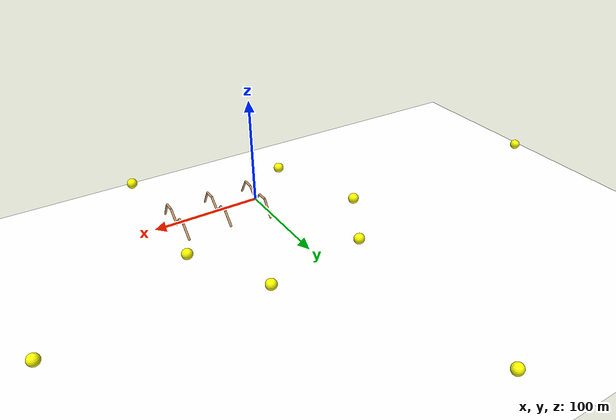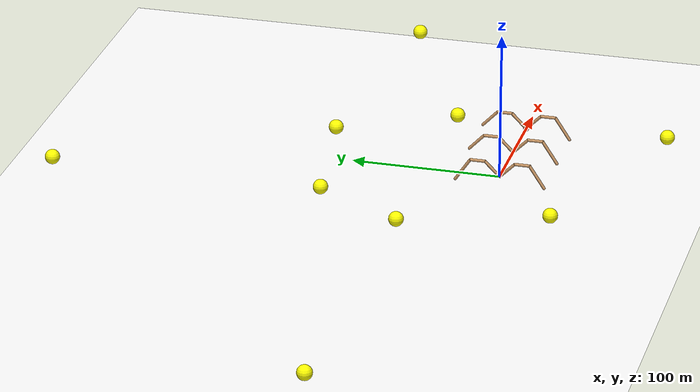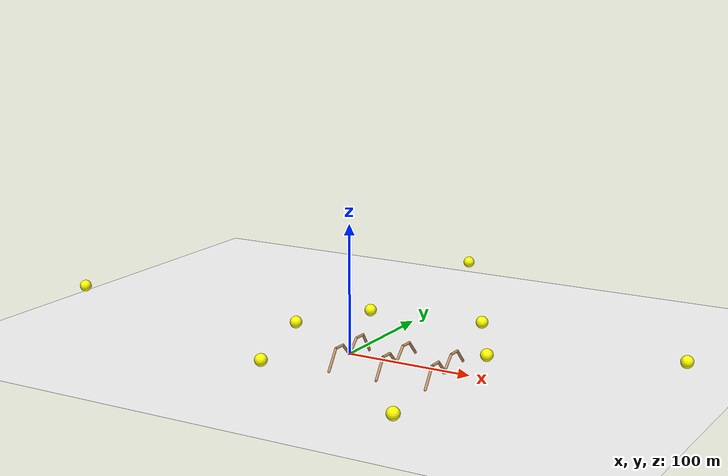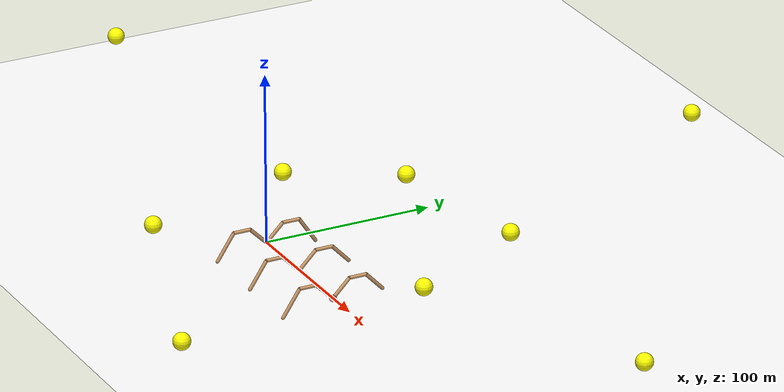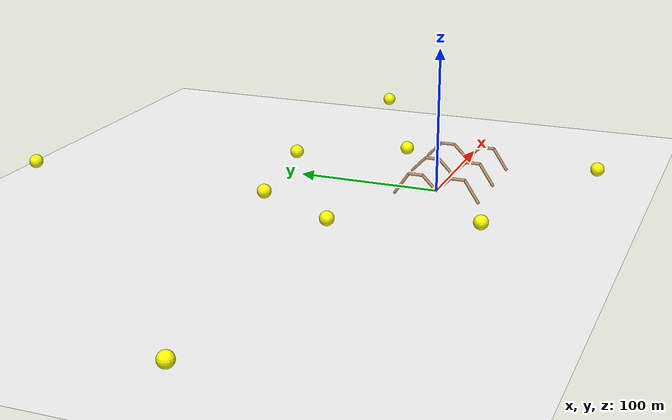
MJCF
<mujoco>
    <option timestep="0.02" viscosity="0" density="0" gravity="0 0 -9.81" collision="dynamic"/>
    <compiler coordinate="global" angle="degree"/>
    <default>
        <geom rgba=".8 .6 .4 1"/>
        <joint limited="true"/>
    </default>
    <asset>
        <texture type="skybox" builtin="gradient" rgb1="1 1 1" rgb2=".6 .8 1" width="256" height="256"/>
        <texture type="2d" name="checkers" builtin="checker" width="256" height="256" rgb1="0 0 0" rgb2="1 1 1"/>
        <material name="checker_mat" texture="checkers" texrepeat="15 15"/>
    </asset>
    <visual>
        <global offwidth="1920" offheight="1080"/>
    </visual>

    <worldbody>
        <camera name='targeting' pos='1 1 2' mode='targetbodycom' target='body_0'/>

        <geom name="floor" material="checker_mat" pos="30 50 -20" size="420 420 .125" rgba="1 1 1 1" type="plane"
              condim="6" friction="5 0.5 0.1"/>

        <site name="reference_0" pos="90 50 0" size="5 5 5" type="sphere" rgba="255 255 0 1"/>
        <site name="reference_1" pos="50 125 0" size="5 5 5" type="sphere" rgba="255 255 0 1"/>
        <site name="reference_2" pos="-45 110 0" size="5 5 5" type="sphere" rgba="255 255 0 1"/>
        <site name="reference_3" pos="-80 50 0" size="5 5 5" type="sphere" rgba="255 255 0 1"/>
        <site name="reference_4" pos="-50 -45 0" size="5 5 5" type="sphere" rgba="255 255 0 1"/>
        <site name="reference_5" pos="90 -95 0" size="5 5 5" type="sphere" rgba="255 255 0 1"/>
        <site name="reference_6" pos="225 110 0" size="5 5 5" type="sphere" rgba="255 255 0 1"/>
        <site name="reference_7" pos="-45 295 0" size="5 5 5" type="sphere" rgba="255 255 0 1"/>
        <site name="reference_8" pos="-300 50 0" size="5 5 5" type="sphere" rgba="255 255 0 1"/>

        <body name="body_0">
            <freejoint/>
            <site name="head" size="2 2 2" rgba="1 0 0 0.5" pos="80 0 0"/>
            <geom name="geom_0" type="sphere" pos="0.00 0.00 0.20" size="0.3"/>
            <body name="body_1">
                <!--1st arms-->
                <geom name="geom_1" type="capsule" fromto="0.00 0.00 0.00 0.00 10.0 10.0" size="01.00000"/>
                <geom name="geom_2" type="capsule" fromto="0.00 0.00 0.00 0.00 -10.0 10.0" size="01.00000"/>
                <!--spine-->
                <geom name="geom_3" type="capsule" fromto="0.00 0.00 0.00 80.0 0.00 0.00" size="01.00000"/>
                <!--contact point which is used to create heading vector-->
                <geom name="contact_1" type="sphere" pos="0.00 0.00 0.00" size="0.01" rgba="1 0 1 0.5" density="1"/>

                <!--2nd arms-->
                <geom name="geom_4" type="capsule" fromto="40.0 0.00 0.00 40.0 10.0 10.0" size="01.00000"/>
                <geom name="geom_5" type="capsule" fromto="40.0 0.00 0.00 40.0 -10.0 10.0" size="01.00000"/>

                <!--3rd arms-->
                <geom name="geom_18" type="capsule" fromto="80.0 0.00 0.00 80.0 10.0 10.0" size="01.00000"/>
                <geom name="geom_19" type="capsule" fromto="80.0 0.00 0.00 80.0 -10.0 10.0" size="01.00000"/>

                <!--first leg pair-->
                <!--upper leg-->
                <body name="body_2">
                    <joint type="hinge" pos="0 -10 10" axis="0 0 1" limited="true" range="-45 45" name="motor_0"/>
                    <geom name="geom_6" type="capsule" fromto="0.00 -10.0 10.0 0.00 -20.0 10.0" size="01.00000"/>
                    <!--lower leg-->
                    <body name="body_3">
                        <joint type="hinge" pos="0 -20 10" axis="1 0 0" limited="true" range="-20 45" name="motor_1"/>
                        <geom name="geom_7" type="capsule" fromto="0.00 -20.0 10.0 0.00 -30.0 -5.0" size="01.00000"/>
                    </body>
                </body>
                <!--upper leg-->
                <body name="body_4">
                    <joint type="hinge" pos="0 10 10" axis="0 0 1" limited="true" range="-45 45" name="motor_2"/>
                    <geom name="geom_8" type="capsule" fromto="0.00 10.0 10.0 0.00 20.0 10.0" size="01.00000"/>
                    <!--lower leg-->
                    <body name="body_5">
                        <joint type="hinge" pos="0 20 10" axis="1 0 0" limited="true" range="-20 45" name="motor_3"/>
                        <geom name="geom_9" type="capsule" fromto="0.00 20.0 10.0 0.00 30.0 -5" size="01.00000"/>
                    </body>
                </body>

                <!--second leg pair-->
                <!--upper leg-->
                <body name="body_6">
                    <joint type="hinge" pos="40 -10 10" axis="0 0 1" limited="true" range="-45 45" name="motor_4"/>
                    <geom name="geom_10" type="capsule" fromto="40.0 -10.0 10.0 40.0 -20.0 10.0" size="01.00000"/>
                    <!--lower leg-->
                    <body name="body_7">
                        <joint type="hinge" pos="40 -20 10" axis="1 0 0" limited="true" range="-20 45" name="motor_5"/>
                        <geom name="geom_11" type="capsule" fromto="40.0 -20.0 10.0 40.0 -30.0 -5.0" size="01.00000"/>
                    </body>
                </body>
                <!--upper leg-->
                <body name="body_8">
                    <joint type="hinge" pos="40 10 10" axis="0 0 1" limited="true" range="-45 45" name="motor_6"/>
                    <geom name="geom_12" type="capsule" fromto="40.0 10.0 10.0 40.0 20.0 10.0" size="01.00000"/>
                    <!--lower leg-->
                    <body name="body_9">
                        <joint type="hinge" pos="40 20 10" axis="1 0 0" limited="true" range="-20 45" name="motor_7"/>
                        <geom name="geom_13" type="capsule" fromto="40.0 20.0 10.0 40.0 30.0 -0.5" size="01.00000"/>
                    </body>
                </body>

                <!--third leg pair-->
                <!--upper leg-->
                <body name="body_10">
                    <joint type="hinge" pos="80 -10 10" axis="0 0 1" limited="true" range="-45 45" name="motor_8"/>
                    <geom name="geom_14" type="capsule" fromto="80 -10.0 10.0 80 -20.0 10.0" size="01.00000"/>
                    <!--lower leg-->
                    <body name="body_11">
                        <joint type="hinge" pos="80 -20 10" axis="1 0 0" limited="true" range="-20 45" name="motor_9"/>
                        <geom name="geom_15" type="capsule" fromto="80 -20.0 10.0 80 -30.0 -5.0" size="01.00000"/>
                    </body>
                </body>
                <!--upper leg-->
                <body name="body_12">
                    <joint type="hinge" pos="80 10 10" axis="0 0 1" limited="true" range="-45 45" name="motor_10"/>
                    <geom name="geom_16" type="capsule" fromto="80 10.0 10.0 80 20.0 10.0" size="01.00000"/>
                    <!--lower leg-->
                    <body name="body_13">
                        <joint type="hinge" pos="80 20 10" axis="1 0 0" limited="true" range="-20 45" name="motor_11"/>
                        <geom name="geom_17" type="capsule" fromto="80 20.0 10.0 80 30.0 -0.5" size="01.00000"/>
                    </body>
                </body>
            </body>
        </body>
    </worldbody>

    <actuator>
        <motor name="motor_0" joint="motor_0" gear="100000"/>
        <motor name="motor_1" joint="motor_1" gear="100000"/>
        <motor name="motor_2" joint="motor_2" gear="100000"/>
        <motor name="motor_3" joint="motor_3" gear="100000"/>
        <motor name="motor_4" joint="motor_4" gear="100000"/>
        <motor name="motor_5" joint="motor_5" gear="100000"/>
        <motor name="motor_6" joint="motor_6" gear="100000"/>
        <motor name="motor_7" joint="motor_7" gear="100000"/>
        <motor name="motor_8" joint="motor_8" gear="100000"/>
        <motor name="motor_9" joint="motor_9" gear="100000"/>
        <motor name="motor_10" joint="motor_10" gear="100000"/>
        <motor name="motor_11" joint="motor_11" gear="100000"/>
    </actuator>
</mujoco>
